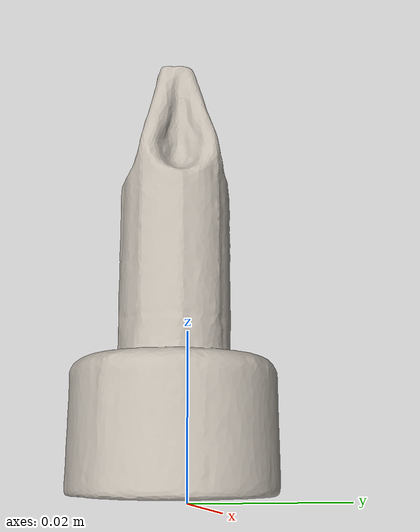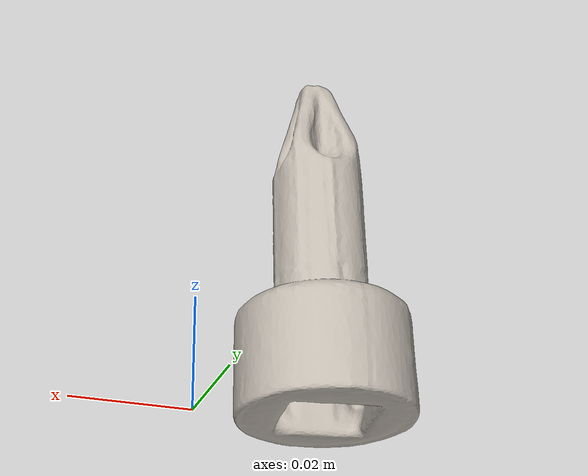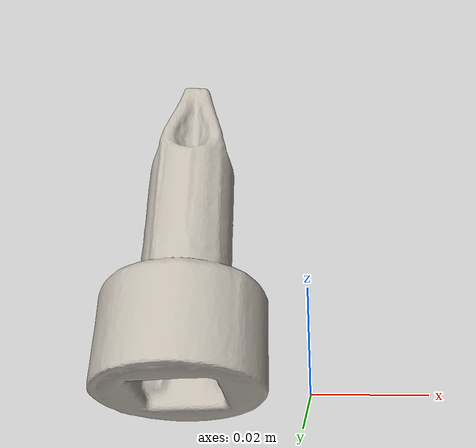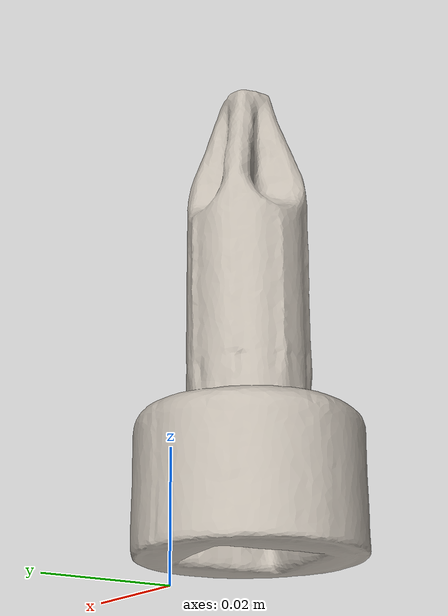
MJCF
<mujoco model="airplane_d">
  <compiler angle="radian" meshdir="assets" texturedir="assets"/>
    <default>
        <default class="ycb_col">
            <geom contype="1" conaffinity="1" group="3" rgba=".4 .5 .6 1"/>
        </default>
        <default class="ycb_viz">
            <geom contype="0" conaffinity="0" type="mesh" mass="0"/>
        </default>
    </default>
  <asset>
    <texture type="2d" name="d_toy_airplane_tex" file="texture_map.png"/>
    <material name="d_toy_airplane_mat" texture="d_toy_airplane_tex" specular="0.5" shininess="0.5"/>
    <mesh file="textured.obj" name="d_toy_airplane"/>
    <mesh file="textured_collision_0.obj" name="d_toy_airplane_collision_0"/>
    <mesh file="textured_collision_1.obj" name="d_toy_airplane_collision_1"/>
    <mesh file="textured_collision_2.obj" name="d_toy_airplane_collision_2"/>
    <mesh file="textured_collision_3.obj" name="d_toy_airplane_collision_3"/>
    <mesh file="textured_collision_4.obj" name="d_toy_airplane_collision_4"/>
    <mesh file="textured_collision_5.obj" name="d_toy_airplane_collision_5"/>
    <mesh file="textured_collision_6.obj" name="d_toy_airplane_collision_6"/>
    <mesh file="textured_collision_7.obj" name="d_toy_airplane_collision_7"/>
    <mesh file="textured_collision_8.obj" name="d_toy_airplane_collision_8"/>
    <mesh file="textured_collision_9.obj" name="d_toy_airplane_collision_9"/>
    <mesh file="textured_collision_10.obj" name="d_toy_airplane_collision_10"/>
    <mesh file="textured_collision_11.obj" name="d_toy_airplane_collision_11"/>
    <mesh file="textured_collision_12.obj" name="d_toy_airplane_collision_12"/>
    <mesh file="textured_collision_13.obj" name="d_toy_airplane_collision_13"/>
    <mesh file="textured_collision_14.obj" name="d_toy_airplane_collision_14"/>
  </asset>
  <worldbody>
      <geom material="d_toy_airplane_mat" mesh="d_toy_airplane" class="ycb_viz"/>
      <geom mesh="d_toy_airplane_collision_0" class="ycb_col" conaffinity="1" condim="4" friction="0.1 0.1 0.1" mass="0.015530284228717127" rgba="1 1 1 1" solimp="0.99 0.99 0.01" solref=".001 0.1" type="mesh" group="3"/>
      <geom mesh="d_toy_airplane_collision_1" class="ycb_col" conaffinity="1" condim="4" friction="0.1 0.1 0.1" mass="0.005212371482837032" rgba="1 1 1 1" solimp="0.99 0.99 0.01" solref=".001 0.1" type="mesh" group="3"/>
      <geom mesh="d_toy_airplane_collision_2" class="ycb_col" conaffinity="1" condim="4" friction="0.1 0.1 0.1" mass="0.0032852268329925747" rgba="1 1 1 1" solimp="0.99 0.99 0.01" solref=".001 0.1" type="mesh" group="3"/>
      <geom mesh="d_toy_airplane_collision_3" class="ycb_col" conaffinity="1" condim="4" friction="0.1 0.1 0.1" mass="0.004479043270689261" rgba="1 1 1 1" solimp="0.99 0.99 0.01" solref=".001 0.1" type="mesh" group="3"/>
      <geom mesh="d_toy_airplane_collision_4" class="ycb_col" conaffinity="1" condim="4" friction="0.1 0.1 0.1" mass="0.005480123775226347" rgba="1 1 1 1" solimp="0.99 0.99 0.01" solref=".001 0.1" type="mesh" group="3"/>
      <geom mesh="d_toy_airplane_collision_5" class="ycb_col" conaffinity="1" condim="4" friction="0.1 0.1 0.1" mass="0.000972746976486937" rgba="1 1 1 1" solimp="0.99 0.99 0.01" solref=".001 0.1" type="mesh" group="3"/>
      <geom mesh="d_toy_airplane_collision_6" class="ycb_col" conaffinity="1" condim="4" friction="0.1 0.1 0.1" mass="0.0009644861796220664" rgba="1 1 1 1" solimp="0.99 0.99 0.01" solref=".001 0.1" type="mesh" group="3"/>
      <geom mesh="d_toy_airplane_collision_7" class="ycb_col" conaffinity="1" condim="4" friction="0.1 0.1 0.1" mass="0.0009479143656017279" rgba="1 1 1 1" solimp="0.99 0.99 0.01" solref=".001 0.1" type="mesh" group="3"/>
      <geom mesh="d_toy_airplane_collision_8" class="ycb_col" conaffinity="1" condim="4" friction="0.1 0.1 0.1" mass="0.0008258241378934529" rgba="1 1 1 1" solimp="0.99 0.99 0.01" solref=".001 0.1" type="mesh" group="3"/>
      <geom mesh="d_toy_airplane_collision_9" class="ycb_col" conaffinity="1" condim="4" friction="0.1 0.1 0.1" mass="0.0009943443890239661" rgba="1 1 1 1" solimp="0.99 0.99 0.01" solref=".001 0.1" type="mesh" group="3"/>
      <geom mesh="d_toy_airplane_collision_10" class="ycb_col" conaffinity="1" condim="4" friction="0.1 0.1 0.1" mass="0.0013425632151190742" rgba="1 1 1 1" solimp="0.99 0.99 0.01" solref=".001 0.1" type="mesh" group="3"/>
      <geom mesh="d_toy_airplane_collision_11" class="ycb_col" conaffinity="1" condim="4" friction="0.1 0.1 0.1" mass="0.00382024697339709" rgba="1 1 1 1" solimp="0.99 0.99 0.01" solref=".001 0.1" type="mesh" group="3"/>
      <geom mesh="d_toy_airplane_collision_12" class="ycb_col" conaffinity="1" condim="4" friction="0.1 0.1 0.1" mass="0.0012808341808137646" rgba="1 1 1 1" solimp="0.99 0.99 0.01" solref=".001 0.1" type="mesh" group="3"/>
      <geom mesh="d_toy_airplane_collision_13" class="ycb_col" conaffinity="1" condim="4" friction="0.1 0.1 0.1" mass="0.001154569926226416" rgba="1 1 1 1" solimp="0.99 0.99 0.01" solref=".001 0.1" type="mesh" group="3"/>
      <geom mesh="d_toy_airplane_collision_14" class="ycb_col" conaffinity="1" condim="4" friction="0.1 0.1 0.1" mass="0.0037094200653531566" rgba="1 1 1 1" solimp="0.99 0.99 0.01" solref=".001 0.1" type="mesh" group="3"/>
  </worldbody>
</mujoco>
